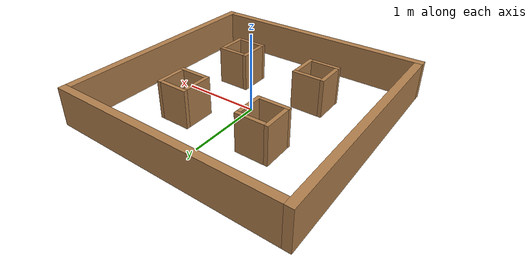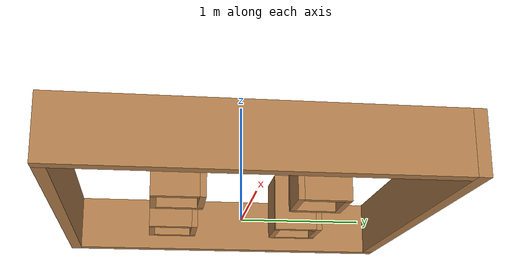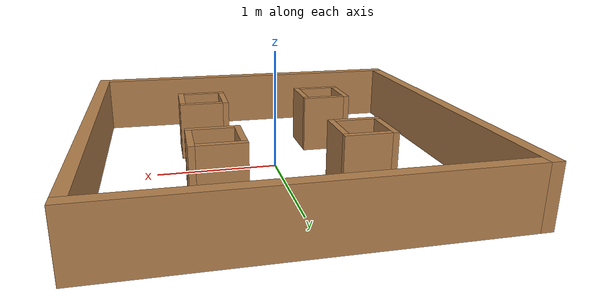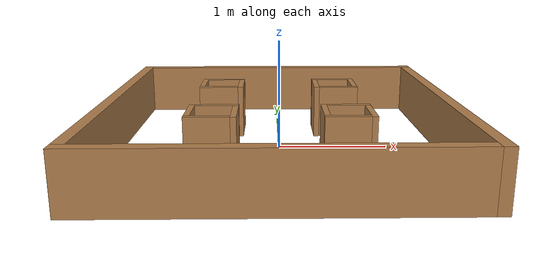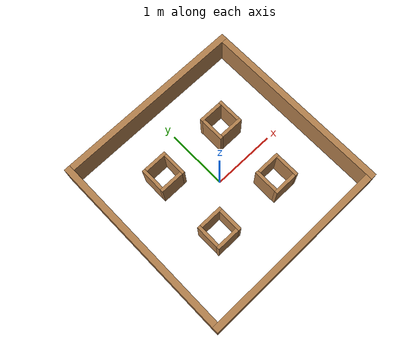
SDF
<?xml version='1.0'?>
<sdf version='1.7'>
  <model name='project2.world'>
    <pose>0 0 0 0 -0 0</pose>
    <link name='Wall_21'>
      <collision name='Wall_21_Collision'>
        <geometry>
          <box>
            <size>3 0.1 0.5</size>
          </box>
        </geometry>
        <pose>0 0 0.25 0 -0 0</pose>
      </collision>
      <visual name='Wall_21_Visual'>
        <pose>0 0 0.25 0 -0 0</pose>
        <geometry>
          <box>
            <size>3 0.1 0.5</size>
          </box>
        </geometry>
        <material>
          <script>
            <uri>file://media/materials/scripts/gazebo.material</uri>
            <name>Gazebo/Wood</name>
          </script>
          <ambient>1 1 1 1</ambient>
        </material>
        <meta>
          <layer>0</layer>
        </meta>
      </visual>
      <pose>1.5 -0.05 0 0 -0 -1.5708</pose>
    </link>
    <link name='Wall_23'>
      <collision name='Wall_23_Collision'>
        <geometry>
          <box>
            <size>3 0.1 0.5</size>
          </box>
        </geometry>
        <pose>0 0 0.25 0 -0 0</pose>
      </collision>
      <visual name='Wall_23_Visual'>
        <pose>0 0 0.25 0 -0 0</pose>
        <geometry>
          <box>
            <size>3 0.1 0.5</size>
          </box>
        </geometry>
        <material>
          <script>
            <uri>file://media/materials/scripts/gazebo.material</uri>
            <name>Gazebo/Wood</name>
          </script>
          <ambient>1 1 1 1</ambient>
        </material>
        <meta>
          <layer>0</layer>
        </meta>
      </visual>
      <pose>-0.05 -1.5 0 0 -0 0</pose>
    </link>
    <link name='Wall_25'>
      <collision name='Wall_25_Collision'>
        <geometry>
          <box>
            <size>3 0.1 0.5</size>
          </box>
        </geometry>
        <pose>0 0 0.25 0 -0 0</pose>
      </collision>
      <visual name='Wall_25_Visual'>
        <pose>0 0 0.25 0 -0 0</pose>
        <geometry>
          <box>
            <size>3 0.1 0.5</size>
          </box>
        </geometry>
        <material>
          <script>
            <uri>file://media/materials/scripts/gazebo.material</uri>
            <name>Gazebo/Wood</name>
          </script>
          <ambient>1 1 1 1</ambient>
        </material>
        <meta>
          <layer>0</layer>
        </meta>
      </visual>
      <pose>0.05 1.5 0 0 -0 0</pose>
    </link>
    <link name='Wall_27'>
      <collision name='Wall_27_Collision'>
        <geometry>
          <box>
            <size>3 0.1 0.5</size>
          </box>
        </geometry>
        <pose>0 0 0.25 0 -0 0</pose>
      </collision>
      <visual name='Wall_27_Visual'>
        <pose>0 0 0.25 0 -0 0</pose>
        <geometry>
          <box>
            <size>3 0.1 0.5</size>
          </box>
        </geometry>
        <material>
          <script>
            <uri>file://media/materials/scripts/gazebo.material</uri>
            <name>Gazebo/Wood</name>
          </script>
          <ambient>1 1 1 1</ambient>
        </material>
        <meta>
          <layer>0</layer>
        </meta>
      </visual>
      <pose>-1.5 0.05 0 0 -0 1.5708</pose>
    </link>
    <link name='Wall_29'>
      <collision name='Wall_29_Collision'>
        <geometry>
          <box>
            <size>0.375 0.05 0.5</size>
          </box>
        </geometry>
        <pose>0 0 0.25 0 -0 0</pose>
      </collision>
      <visual name='Wall_29_Visual'>
        <pose>0 0 0.25 0 -0 0</pose>
        <geometry>
          <box>
            <size>0.375 0.05 0.5</size>
          </box>
        </geometry>
        <material>
          <script>
            <uri>file://media/materials/scripts/gazebo.material</uri>
            <name>Gazebo/Wood</name>
          </script>
          <ambient>1 1 1 1</ambient>
        </material>
        <meta>
          <layer>0</layer>
        </meta>
      </visual>
      <pose>0.375 0.5375 0 0 -0 -1.5708</pose>
    </link>
    <link name='Wall_31'>
      <collision name='Wall_31_Collision'>
        <geometry>
          <box>
            <size>0.375 0.05 0.5</size>
          </box>
        </geometry>
        <pose>0 0 0.25 0 -0 0</pose>
      </collision>
      <visual name='Wall_31_Visual'>
        <pose>0 0 0.25 0 -0 0</pose>
        <geometry>
          <box>
            <size>0.375 0.05 0.5</size>
          </box>
        </geometry>
        <material>
          <script>
            <uri>file://media/materials/scripts/gazebo.material</uri>
            <name>Gazebo/Wood</name>
          </script>
          <ambient>1 1 1 1</ambient>
        </material>
        <meta>
          <layer>0</layer>
        </meta>
      </visual>
      <pose>0.5375 0.75 0 0 -0 0</pose>
    </link>
    <link name='Wall_38'>
      <collision name='Wall_38_Collision'>
        <geometry>
          <box>
            <size>0.375 0.05 0.5</size>
          </box>
        </geometry>
        <pose>0 0 0.25 0 -0 0</pose>
      </collision>
      <visual name='Wall_38_Visual'>
        <pose>0 0 0.25 0 -0 0</pose>
        <geometry>
          <box>
            <size>0.375 0.05 0.5</size>
          </box>
        </geometry>
        <material>
          <script>
            <uri>file://media/materials/scripts/gazebo.material</uri>
            <name>Gazebo/Wood</name>
          </script>
          <ambient>1 1 1 1</ambient>
        </material>
        <meta>
          <layer>0</layer>
        </meta>
      </visual>
      <pose>0.5875 0.375 0 0 -0 0</pose>
    </link>
    <link name='Wall_40'>
      <collision name='Wall_40_Collision'>
        <geometry>
          <box>
            <size>0.375 0.05 0.5</size>
          </box>
        </geometry>
        <pose>0 0 0.25 0 -0 0</pose>
      </collision>
      <visual name='Wall_40_Visual'>
        <pose>0 0 0.25 0 -0 0</pose>
        <geometry>
          <box>
            <size>0.375 0.05 0.5</size>
          </box>
        </geometry>
        <material>
          <script>
            <uri>file://media/materials/scripts/gazebo.material</uri>
            <name>Gazebo/Wood</name>
          </script>
          <ambient>1 1 1 1</ambient>
        </material>
        <meta>
          <layer>0</layer>
        </meta>
      </visual>
      <pose>0.75 0.5875 0 0 -0 1.5708</pose>
    </link>
    <link name='Wall_42'>
      <collision name='Wall_42_Collision'>
        <geometry>
          <box>
            <size>0.375 0.05 0.5</size>
          </box>
        </geometry>
        <pose>0 0 0.25 0 -0 0</pose>
      </collision>
      <visual name='Wall_42_Visual'>
        <pose>0 0 0.25 0 -0 0</pose>
        <geometry>
          <box>
            <size>0.375 0.05 0.5</size>
          </box>
        </geometry>
        <material>
          <script>
            <uri>file://media/materials/scripts/gazebo.material</uri>
            <name>Gazebo/Wood</name>
          </script>
          <ambient>1 1 1 1</ambient>
        </material>
        <meta>
          <layer>0</layer>
        </meta>
      </visual>
      <pose>-0.5375 0.75 0 0 -0 3.14159</pose>
    </link>
    <link name='Wall_44'>
      <collision name='Wall_44_Collision'>
        <geometry>
          <box>
            <size>0.375 0.05 0.5</size>
          </box>
        </geometry>
        <pose>0 0 0.25 0 -0 0</pose>
      </collision>
      <visual name='Wall_44_Visual'>
        <pose>0 0 0.25 0 -0 0</pose>
        <geometry>
          <box>
            <size>0.375 0.05 0.5</size>
          </box>
        </geometry>
        <material>
          <script>
            <uri>file://media/materials/scripts/gazebo.material</uri>
            <name>Gazebo/Wood</name>
          </script>
          <ambient>1 1 1 1</ambient>
        </material>
        <meta>
          <layer>0</layer>
        </meta>
      </visual>
      <pose>-0.5875 0.375 0 0 -0 3.14159</pose>
    </link>
    <link name='Wall_47'>
      <collision name='Wall_47_Collision'>
        <geometry>
          <box>
            <size>0.375 0.05 0.5</size>
          </box>
        </geometry>
        <pose>0 0 0.25 0 -0 0</pose>
      </collision>
      <visual name='Wall_47_Visual'>
        <pose>0 0 0.25 0 -0 0</pose>
        <geometry>
          <box>
            <size>0.375 0.05 0.5</size>
          </box>
        </geometry>
        <material>
          <script>
            <uri>file://media/materials/scripts/gazebo.material</uri>
            <name>Gazebo/Wood</name>
          </script>
          <ambient>1 1 1 1</ambient>
        </material>
        <meta>
          <layer>0</layer>
        </meta>
      </visual>
      <pose>-0.75 0.5875 0 0 -0 1.5708</pose>
    </link>
    <link name='Wall_49'>
      <collision name='Wall_49_Collision'>
        <geometry>
          <box>
            <size>0.375 0.05 0.5</size>
          </box>
        </geometry>
        <pose>0 0 0.25 0 -0 0</pose>
      </collision>
      <visual name='Wall_49_Visual'>
        <pose>0 0 0.25 0 -0 0</pose>
        <geometry>
          <box>
            <size>0.375 0.05 0.5</size>
          </box>
        </geometry>
        <material>
          <script>
            <uri>file://media/materials/scripts/gazebo.material</uri>
            <name>Gazebo/Wood</name>
          </script>
          <ambient>1 1 1 1</ambient>
        </material>
        <meta>
          <layer>0</layer>
        </meta>
      </visual>
      <pose>-0.375 0.5375 0 0 -0 -1.5708</pose>
    </link>
    <link name='Wall_51'>
      <collision name='Wall_51_Collision'>
        <geometry>
          <box>
            <size>0.375 0.05 0.5</size>
          </box>
        </geometry>
        <pose>0 0 0.25 0 -0 0</pose>
      </collision>
      <visual name='Wall_51_Visual'>
        <pose>0 0 0.25 0 -0 0</pose>
        <geometry>
          <box>
            <size>0.375 0.05 0.5</size>
          </box>
        </geometry>
        <material>
          <script>
            <uri>file://media/materials/scripts/gazebo.material</uri>
            <name>Gazebo/Wood</name>
          </script>
          <ambient>1 1 1 1</ambient>
        </material>
        <meta>
          <layer>0</layer>
        </meta>
      </visual>
      <pose>-0.75 -0.5375 0 0 -0 1.5708</pose>
    </link>
    <link name='Wall_53'>
      <collision name='Wall_53_Collision'>
        <geometry>
          <box>
            <size>0.375 0.05 0.5</size>
          </box>
        </geometry>
        <pose>0 0 0.25 0 -0 0</pose>
      </collision>
      <visual name='Wall_53_Visual'>
        <pose>0 0 0.25 0 -0 0</pose>
        <geometry>
          <box>
            <size>0.375 0.05 0.5</size>
          </box>
        </geometry>
        <material>
          <script>
            <uri>file://media/materials/scripts/gazebo.material</uri>
            <name>Gazebo/Wood</name>
          </script>
          <ambient>1 1 1 1</ambient>
        </material>
        <meta>
          <layer>0</layer>
        </meta>
      </visual>
      <pose>-0.5375 -0.375 0 0 -0 3.14159</pose>
    </link>
    <link name='Wall_55'>
      <collision name='Wall_55_Collision'>
        <geometry>
          <box>
            <size>0.375 0.05 0.5</size>
          </box>
        </geometry>
        <pose>0 0 0.25 0 -0 0</pose>
      </collision>
      <visual name='Wall_55_Visual'>
        <pose>0 0 0.25 0 -0 0</pose>
        <geometry>
          <box>
            <size>0.375 0.05 0.5</size>
          </box>
        </geometry>
        <material>
          <script>
            <uri>file://media/materials/scripts/gazebo.material</uri>
            <name>Gazebo/Wood</name>
          </script>
          <ambient>1 1 1 1</ambient>
        </material>
        <meta>
          <layer>0</layer>
        </meta>
      </visual>
      <pose>-0.375 -0.5875 0 0 -0 -1.5708</pose>
    </link>
    <link name='Wall_58'>
      <collision name='Wall_58_Collision'>
        <geometry>
          <box>
            <size>0.375 0.05 0.5</size>
          </box>
        </geometry>
        <pose>0 0 0.25 0 -0 0</pose>
      </collision>
      <visual name='Wall_58_Visual'>
        <pose>0 0 0.25 0 -0 0</pose>
        <geometry>
          <box>
            <size>0.375 0.05 0.5</size>
          </box>
        </geometry>
        <material>
          <script>
            <uri>file://media/materials/scripts/gazebo.material</uri>
            <name>Gazebo/Wood</name>
          </script>
          <ambient>1 1 1 1</ambient>
        </material>
        <meta>
          <layer>0</layer>
        </meta>
      </visual>
      <pose>-0.5875 -0.75 0 0 -0 3.14159</pose>
    </link>
    <link name='Wall_60'>
      <collision name='Wall_60_Collision'>
        <geometry>
          <box>
            <size>0.375 0.05 0.5</size>
          </box>
        </geometry>
        <pose>0 0 0.25 0 -0 0</pose>
      </collision>
      <visual name='Wall_60_Visual'>
        <pose>0 0 0.25 0 -0 0</pose>
        <geometry>
          <box>
            <size>0.375 0.05 0.5</size>
          </box>
        </geometry>
        <material>
          <script>
            <uri>file://media/materials/scripts/gazebo.material</uri>
            <name>Gazebo/Wood</name>
          </script>
          <ambient>1 1 1 1</ambient>
        </material>
        <meta>
          <layer>0</layer>
        </meta>
      </visual>
      <pose>0.5875 -0.375 0 0 -0 0</pose>
    </link>
    <link name='Wall_62'>
      <collision name='Wall_62_Collision'>
        <geometry>
          <box>
            <size>0.375 0.05 0.5</size>
          </box>
        </geometry>
        <pose>0 0 0.25 0 -0 0</pose>
      </collision>
      <visual name='Wall_62_Visual'>
        <pose>0 0 0.25 0 -0 0</pose>
        <geometry>
          <box>
            <size>0.375 0.05 0.5</size>
          </box>
        </geometry>
        <material>
          <script>
            <uri>file://media/materials/scripts/gazebo.material</uri>
            <name>Gazebo/Wood</name>
          </script>
          <ambient>1 1 1 1</ambient>
        </material>
        <meta>
          <layer>0</layer>
        </meta>
      </visual>
      <pose>0.375 -0.5375 0 0 -0 -1.5708</pose>
    </link>
    <link name='Wall_64'>
      <collision name='Wall_64_Collision'>
        <geometry>
          <box>
            <size>0.375 0.05 0.5</size>
          </box>
        </geometry>
        <pose>0 0 0.25 0 -0 0</pose>
      </collision>
      <visual name='Wall_64_Visual'>
        <pose>0 0 0.25 0 -0 0</pose>
        <geometry>
          <box>
            <size>0.375 0.05 0.5</size>
          </box>
        </geometry>
        <material>
          <script>
            <uri>file://media/materials/scripts/gazebo.material</uri>
            <name>Gazebo/Wood</name>
          </script>
          <ambient>1 1 1 1</ambient>
        </material>
        <meta>
          <layer>0</layer>
        </meta>
      </visual>
      <pose>0.75 -0.5875 0 0 -0 -1.5708</pose>
    </link>
    <link name='Wall_67'>
      <collision name='Wall_67_Collision'>
        <geometry>
          <box>
            <size>0.375 0.05 0.5</size>
          </box>
        </geometry>
        <pose>0 0 0.25 0 -0 0</pose>
      </collision>
      <visual name='Wall_67_Visual'>
        <pose>0 0 0.25 0 -0 0</pose>
        <geometry>
          <box>
            <size>0.375 0.05 0.5</size>
          </box>
        </geometry>
        <material>
          <script>
            <uri>file://media/materials/scripts/gazebo.material</uri>
            <name>Gazebo/Wood</name>
          </script>
          <ambient>1 1 1 1</ambient>
        </material>
        <meta>
          <layer>0</layer>
        </meta>
      </visual>
      <pose>0.5375 -0.75 0 0 -0 0</pose>
    </link>
    <static>1</static>
  </model>
</sdf>
